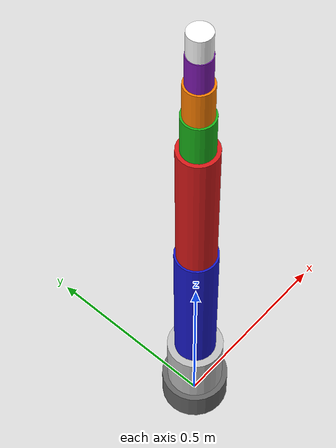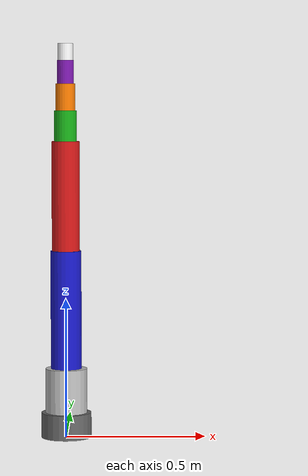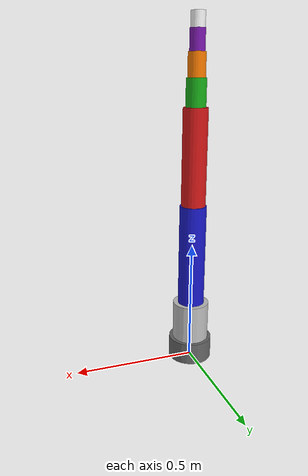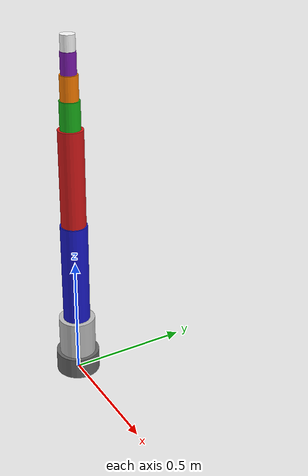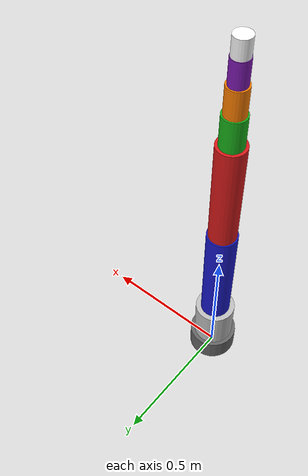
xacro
<?xml version="1.0"?>
<robot xmlns:xacro="http://www.ros.org/wiki/xacro" name="serial_link_robot">
    <xacro:arg name="initial_positions_file" default="initial_positions.yaml" />

    <!-- Import serial_link_robot urdf file -->
    <xacro:include filename="$(find serial_link_robot)/urdf/serial_link_robot.urdf" />

    <!-- Import control_xacro -->
    <xacro:include filename="serial_link_robot.ros2_control.xacro" />

    <xacro:serial_link_robot_ros2_control name="FakeSystem" initial_positions_file="$(arg initial_positions_file)"/>

</robot>

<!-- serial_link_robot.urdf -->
<robot name="serial_link_robot">

  <!-- Base -->
  <link name="base_link">
    <visual>
      <origin xyz="0 0 0.045" rpy="0 0 0"/>
      <geometry>
        <cylinder radius="0.09" length="0.09"/>
      </geometry>
      <material name="gray">
        <color rgba="0.4 0.4 0.4 1.0"/>
      </material>
    </visual>
    <collision>
      <origin xyz="0 0 0.045" rpy="0 0 0"/>
      <geometry>
        <cylinder radius="0.09" length="0.09"/>
      </geometry>
    </collision>
  </link>

  <!-- Joint 1: base rotation -->
  <joint name="joint_1" type="revolute">
    <parent link="base_link"/>
    <child link="link_1"/>
    <origin xyz="0 0 0.09" rpy="0 0 0"/>
    <axis xyz="0 0 1"/>
    <limit lower="-6.283" upper="6.283" effort="150" velocity="1.5"/>
  </joint>

  <!-- Link 1: shoulder pedestal -->
  <link name="link_1">
    <visual>
      <origin xyz="0 0 0.08" rpy="0 0 0"/>
      <geometry>
        <cylinder radius="0.075" length="0.16"/>
      </geometry>
      <material name="light_gray">
        <color rgba="0.75 0.75 0.75 1.0"/>
      </material>
    </visual>
    <collision>
      <origin xyz="0 0 0.08" rpy="0 0 0"/>
      <geometry>
        <cylinder radius="0.075" length="0.16"/>
      </geometry>
    </collision>
  </link>

  <!-- Joint 2: shoulder -->
  <joint name="joint_2" type="revolute">
    <parent link="link_1"/>
    <child link="link_2"/>
    <origin xyz="0 0 0.16" rpy="0 0 0"/>
    <axis xyz="0 1 0"/>
    <limit lower="-3.14" upper="3.14" effort="150" velocity="1.5"/>
  </joint>

  <!-- Link 2: upper arm -->
  <link name="link_2">
    <visual>
      <origin xyz="0 0 0.2125" rpy="0 0 0"/>
      <geometry>
        <cylinder radius="0.055" length="0.425"/>
      </geometry>
      <material name="blue">
        <color rgba="0.1 0.1 0.8 1.0"/>
      </material>
    </visual>
    <collision>
      <origin xyz="0 0 0.2125" rpy="0 0 0"/>
      <geometry>
        <cylinder radius="0.055" length="0.425"/>
      </geometry>
    </collision>
  </link>

  <!-- Joint 3: elbow -->
  <joint name="joint_3" type="revolute">
    <parent link="link_2"/>
    <child link="link_3"/>
    <origin xyz="0 0 0.425" rpy="0 0 0"/>
    <axis xyz="0 1 0"/>
    <limit lower="-3.14" upper="3.14" effort="120" velocity="1.5"/>
  </joint>

  <!-- Link 3: forearm -->
  <link name="link_3">
    <visual>
      <origin xyz="0 0 0.196" rpy="0 0 0"/>
      <geometry>
        <cylinder radius="0.05" length="0.392"/>
      </geometry>
      <material name="red">
        <color rgba="0.85 0.1 0.1 1.0"/>
      </material>
    </visual>
    <collision>
      <origin xyz="0 0 0.196" rpy="0 0 0"/>
      <geometry>
        <cylinder radius="0.05" length="0.392"/>
      </geometry>
    </collision>
  </link>

  <!-- Joint 4: wrist 1 -->
  <joint name="joint_4" type="revolute">
    <parent link="link_3"/>
    <child link="link_4"/>
    <origin xyz="0 0 0.392" rpy="0 0 0"/>
    <axis xyz="1 0 0"/>
    <limit lower="-6.283" upper="6.283" effort="80" velocity="2.0"/>
  </joint>

  <!-- Link 4: wrist section 1 -->
  <link name="link_4">
    <visual>
      <origin xyz="0 0 0.055" rpy="0 0 0"/>
      <geometry>
        <cylinder radius="0.04" length="0.11"/>
      </geometry>
      <material name="green">
        <color rgba="0.1 0.7 0.1 1.0"/>
      </material>
    </visual>
    <collision>
      <origin xyz="0 0 0.055" rpy="0 0 0"/>
      <geometry>
        <cylinder radius="0.04" length="0.11"/>
      </geometry>
    </collision>
  </link>

  <!-- Joint 5: wrist 2 -->
  <joint name="joint_5" type="revolute">
    <parent link="link_4"/>
    <child link="link_5"/>
    <origin xyz="0 0 0.11" rpy="0 0 0"/>
    <axis xyz="0 1 0"/>
    <limit lower="-6.283" upper="6.283" effort="60" velocity="2.5"/>
  </joint>

  <!-- Link 5: wrist section 2 -->
  <link name="link_5">
    <visual>
      <origin xyz="0 0 0.0475" rpy="0 0 0"/>
      <geometry>
        <cylinder radius="0.035" length="0.095"/>
      </geometry>
      <material name="orange">
        <color rgba="1.0 0.5 0.0 1.0"/>
      </material>
    </visual>
    <collision>
      <origin xyz="0 0 0.0475" rpy="0 0 0"/>
      <geometry>
        <cylinder radius="0.035" length="0.095"/>
      </geometry>
    </collision>
  </link>

  <!-- Joint 6: wrist 3 / tool flange rotation -->
  <joint name="joint_6" type="revolute">
    <parent link="link_5"/>
    <child link="link_6"/>
    <origin xyz="0 0 0.095" rpy="0 0 0"/>
    <axis xyz="0 0 1"/>
    <limit lower="-6.283" upper="6.283" effort="40" velocity="3.0"/>
  </joint>

  <!-- Link 6: tool mount -->
  <link name="link_6">
    <visual>
      <origin xyz="0 0 0.0415" rpy="0 0 0"/>
      <geometry>
        <cylinder radius="0.03" length="0.083"/>
      </geometry>
      <material name="purple">
        <color rgba="0.5 0.1 0.7 1.0"/>
      </material>
    </visual>
    <collision>
      <origin xyz="0 0 0.0415" rpy="0 0 0"/>
      <geometry>
        <cylinder radius="0.03" length="0.083"/>
      </geometry>
    </collision>
  </link>

  <!-- End effector -->
  <joint name="joint_ee" type="fixed">
    <parent link="link_6"/>
    <child link="link_ee"/>
    <origin xyz="0 0 0.083" rpy="0 0 0"/>
  </joint>

  <link name="link_ee">
    <visual>
      <origin xyz="0 0 0.03" rpy="0 0 0"/>
      <geometry>
        <cylinder radius="0.028" length="0.06"/>
      </geometry>
      <material name="white">
        <color rgba="1 1 1 1.0"/>
      </material>
    </visual>
    <collision>
      <origin xyz="0 0 0.03" rpy="0 0 0"/>
      <geometry>
        <cylinder radius="0.028" length="0.06"/>
      </geometry>
    </collision>
  </link>

</robot>
